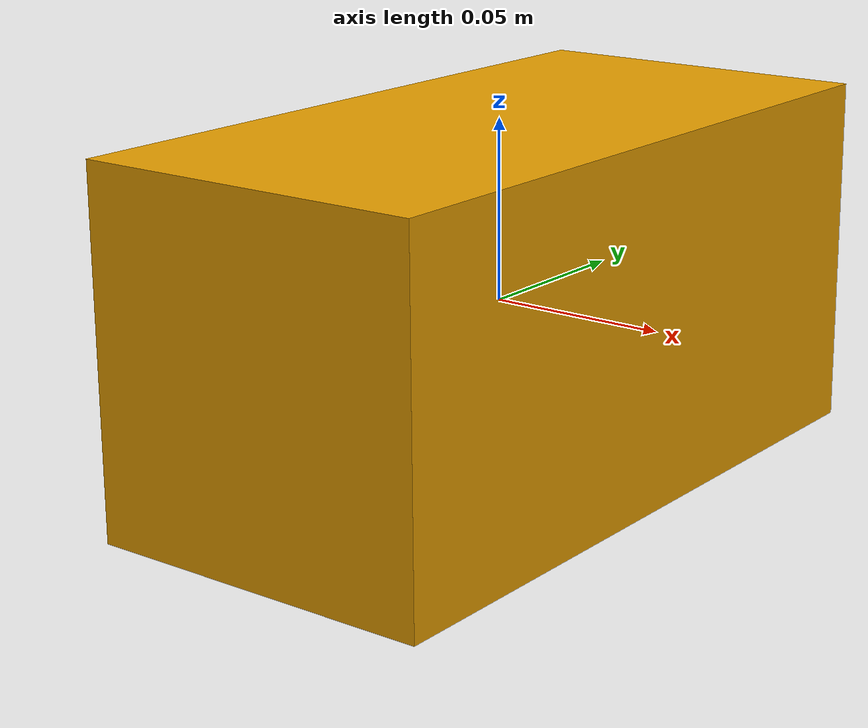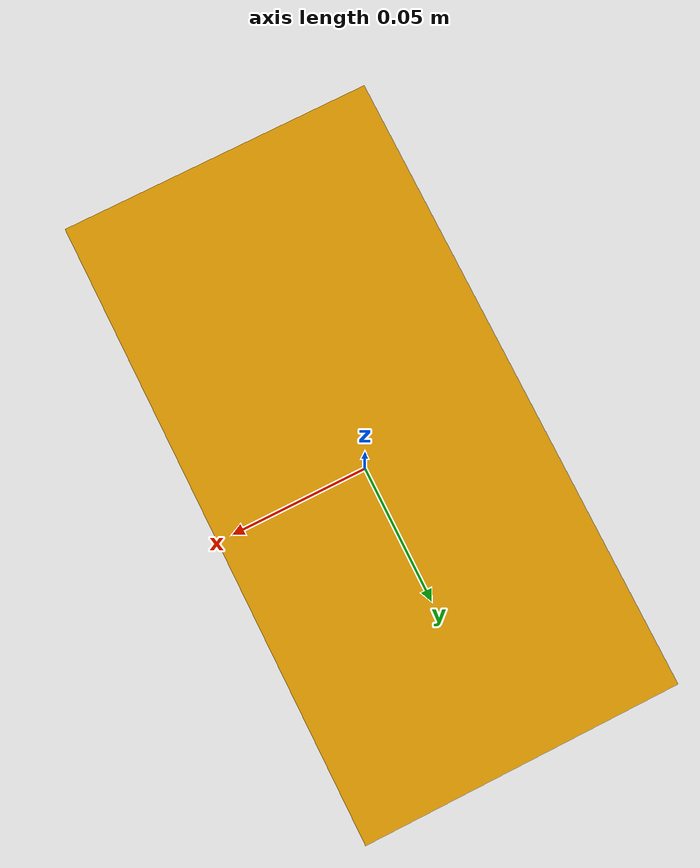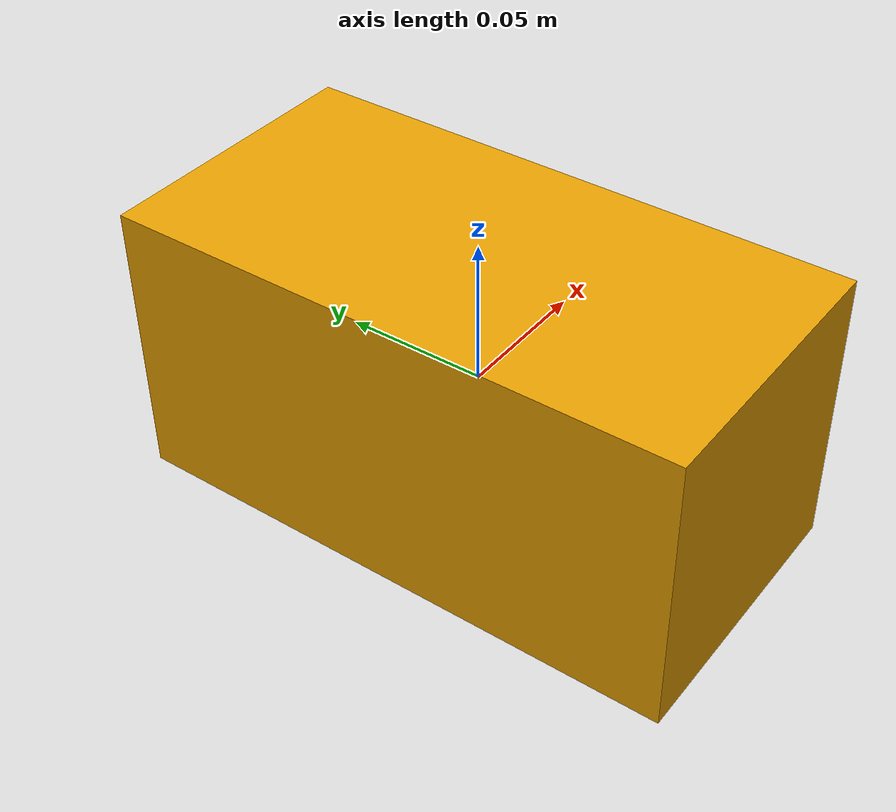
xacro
<?xml version="1.0"?>
<robot xmlns:xacro="http://ros.org/wiki/xacro" name="pcl_tester">

  <link name="camera_link">
    <visual name="camera">
      <origin xyz="0 0 0" rpy="0 0 0"/>
      <geometry>
        <box size="0.1 0.2 0.1" />
      </geometry>
    </visual>
    <collision name="camera">
      <origin xyz="0 0 0" rpy="0 0 0"/>
      <geometry>
        <box size="0.1 0.2 0.1" />
      </geometry>
    </collision>

    <inertial>
      <mass value="1e-5" />
      <origin xyz="0 0 0" rpy="0 0 0"/>
      <inertia ixx="1.0" ixy="1e-6" ixz="1e-6" iyy="1.0" iyz="1e-6" izz="1.0" />
    </inertial>
  </link>

  <gazebo reference="camera_link">
    <sensor type="depth" name="camera">
      <origin xyz="0 0 0" rpy="0 0 0"/>
      <visualize>false</visualize>
      <update_rate>40</update_rate>

        <plugin name="camera_plugin" filename="libgazebo_ros_openni_kinect.so">
          <baseline>0.2</baseline>
          <alwaysOn>true</alwaysOn>
          <updateRate>0.0</updateRate>
          <cameraName>camera_ir</cameraName>
          <robotNamespace>/</robotNamespace>
          <imageTopicName>/camera/depth/image_raw</imageTopicName>
          <cameraInfoTopicName>/camera/depth/camera_info</cameraInfoTopicName>
          <depthImageTopicName>/camera/depth/image_raw</depthImageTopicName>
          <depthImageInfoTopicName>/camera/depth/camera_info</depthImageInfoTopicName>
          <pointCloudTopicName>/camera/depth/points</pointCloudTopicName>
          <frameName>camera_image_link</frameName>
          <pointCloudCutoff>0.05</pointCloudCutoff>
          <distortionK1>0</distortionK1>
          <distortionK2>0</distortionK2>
          <distortionK3>0</distortionK3>
          <distortionT1>0</distortionT1>
          <distortionT2>0</distortionT2>
          <CxPrime>0</CxPrime>
          <Cx>0</Cx>
          <Cy>0</Cy>
          <focalLength>0</focalLength>
          <hackBaseline>0</hackBaseline>
        </plugin>
    </sensor>
    <static>true</static>
  </gazebo>
</robot>
